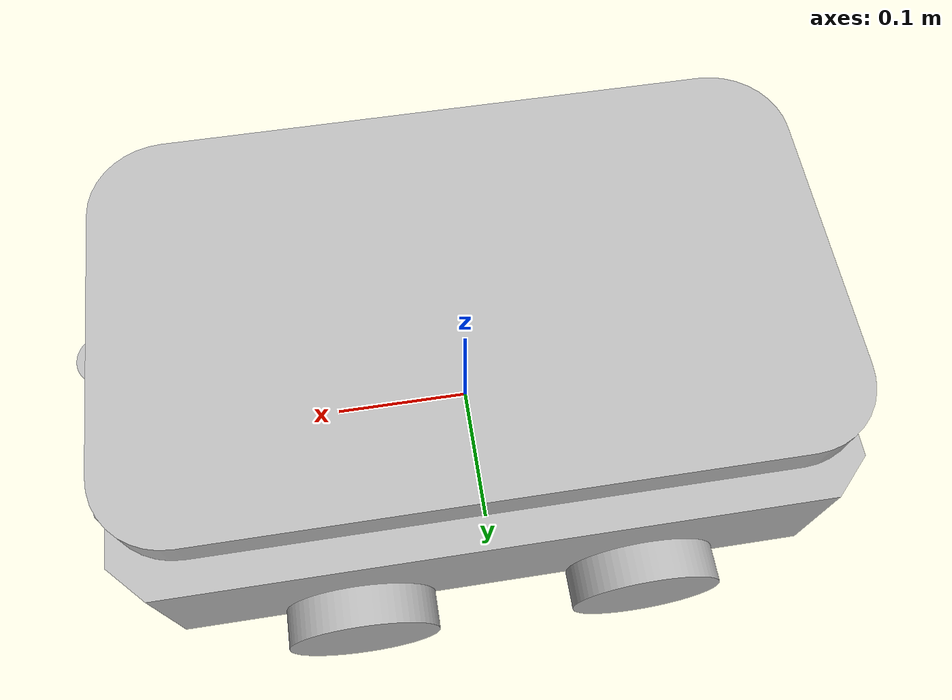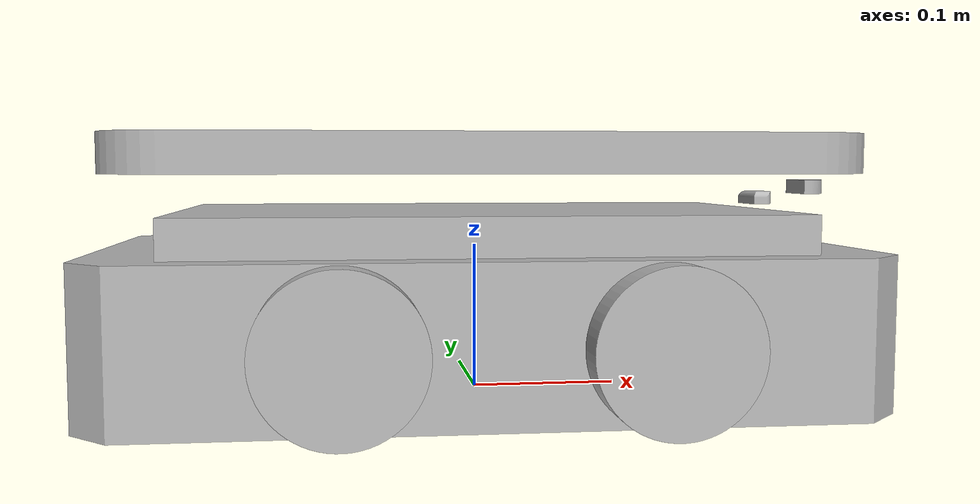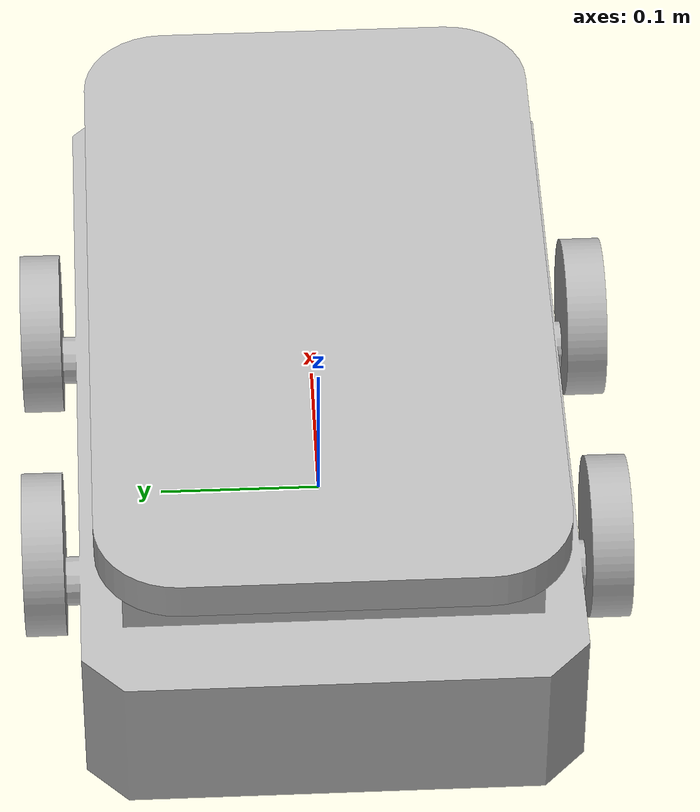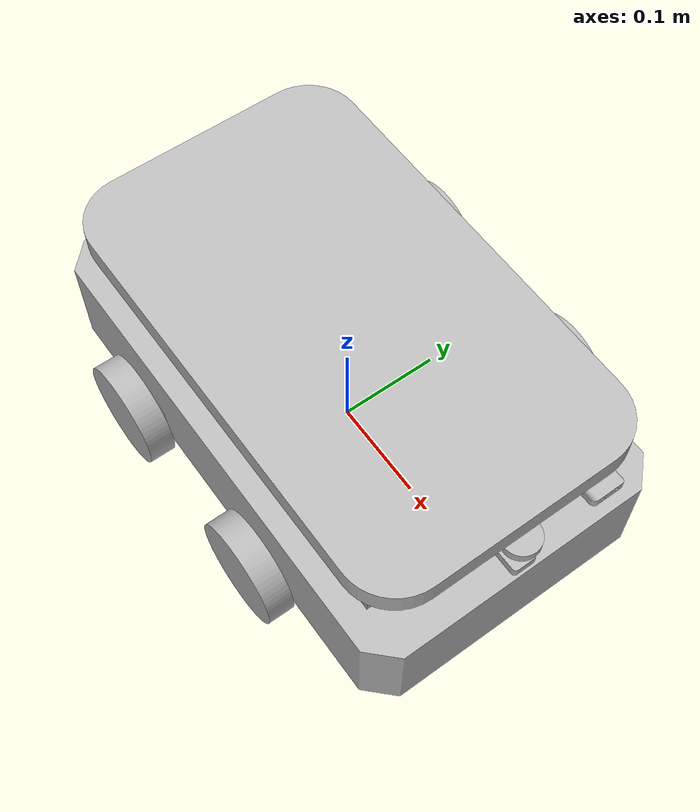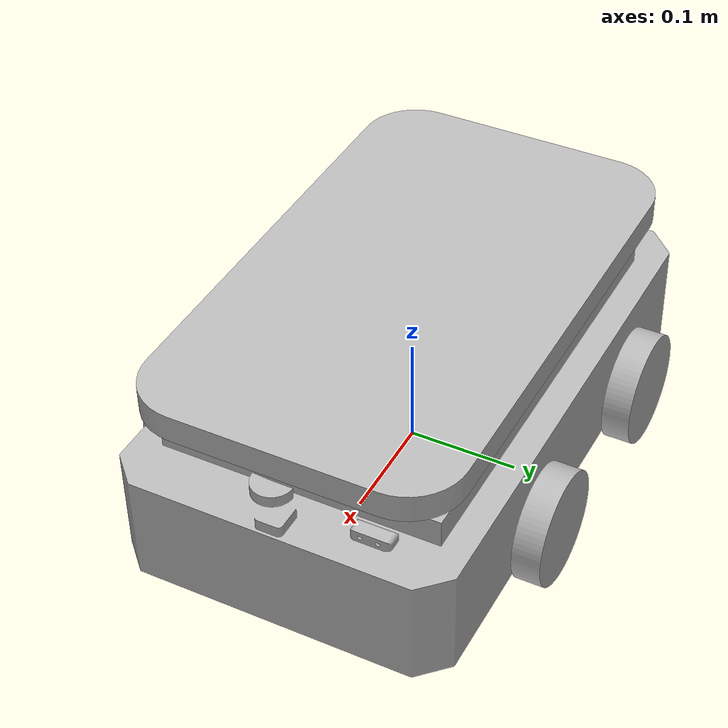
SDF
<?xml version="1.0" ?>
<sdf version="1.5">
    <model name="rusty_v1">
    <link name="base_link">
      <inertial>
        <mass>0.0001</mass>
        <inertia>
          <ixx>1e-09</ixx>
          <ixy>0</ixy>
          <ixz>0</ixz>
          <iyy>1e-09</iyy>
          <iyz>0</iyz>
          <izz>1e-09</izz>
        </inertia>
      </inertial>
       <sensor name="rusty_imu" type="imu">
        <always_on>true</always_on>
        <update_rate>200</update_rate>
        <topic>imu</topic>
        <imu>
          <angular_velocity>
            <x>
              <noise type="gaussian">
                <mean>0.0</mean>
                <stddev>2e-4</stddev>
              </noise>
            </x>
            <y>
              <noise type="gaussian">
                <mean>0.0</mean>
                <stddev>2e-4</stddev>
              </noise>
            </y>
            <z>
              <noise type="gaussian">
                <mean>0.0</mean>
                <stddev>2e-4</stddev>
              </noise>
            </z>
          </angular_velocity>
          <linear_acceleration>
            <x>
              <noise type="gaussian">
                <mean>0.0</mean>
                <stddev>1.7e-2</stddev>
              </noise>
            </x>
            <y>
              <noise type="gaussian">
                <mean>0.0</mean>
                <stddev>1.7e-2</stddev>
              </noise>
            </y>
            <z>
              <noise type="gaussian">
                <mean>0.0</mean>
                <stddev>1.7e-2</stddev>
              </noise>
            </z>
          </linear_acceleration>
        </imu>
      </sensor>
      <visual name="base_link_1__base_link_visual">
        <geometry>
          <mesh>
            <scale>0.01 0.01 0.01</scale>
            <uri>/home/siddarth/ros2ws/src/Rusty/rusty_common/meshes/base_link_1/base_link_visual.obj</uri>
          </mesh>
        </geometry>
      </visual>
      <collision name="base_link_1__base_link_collision">
        <pose relative_to="base_link">0.0 0.0 0.0875 -0.0 -1.5707963267948966 0</pose>
        <geometry>
          <box>
            <size>0.125 0.34 0.5</size>
          </box>
        </geometry>
      </collision>
    </link>

    <link name="rw1_1">
      <pose relative_to="base_link">-0.048075934676033716 0.16599272944775692 0.035152659990737724 6.938893903907236e-18 -0.0 0.0</pose>
      <inertial>
        <pose>0.1430759346760337 -0.3384927294477569 0.014847340009262286 -6.938893903907236e-18 -0.0 0.0</pose>
        <mass>0.1826050729899068</mass>
        <inertia>
          <ixx>0.00012363885150358436</ixx>
          <ixy>-8.673617379884035e-19</ixy>
          <ixz>-2.168404344971009e-19</ixz>
          <iyy>0.00022825634123738127</iyy>
          <iyz>6.505213034913027e-19</iyz>
          <izz>0.00012363885150358522</izz>
        </inertia>
      </inertial>
      <visual name="rw1_1__rw1_visual">
        <geometry>
          <mesh>
            <scale>0.01 0.01 0.01</scale>
            <uri>/home/siddarth/ros2ws/src/Rusty/rusty_common/meshes/rw1_1/rw1_visual.obj</uri>
          </mesh>
        </geometry>
      </visual>
      <collision name="rw1_1__rw1_collision">
        <pose relative_to="base_link">0.095 -0.1725 0.05 -0.0 -1.5707963267948966 0</pose>
        <geometry>
          <box>
            <size>0.10000000000000003 0.025 0.10000000000000002</size>
          </box>
        </geometry>
      </collision>
    </link>

    <link name="lw1_1">
      <pose relative_to="base_link">-0.0029629661386292127 -0.06704285733682042 0.04257306317273629 0.0 -0.0 0.0</pose>
      <inertial>
        <pose>0.09796296613862925 0.23954285733682046 0.007426936827263732 0.0 -0.0 0.0</pose>
        <mass>0.1826050729899069</mass>
        <inertia>
          <ixx>0.00012363885150357915</ixx>
          <ixy>8.673617379884035e-19</ixy>
          <ixz>2.927345865710862e-18</ixz>
          <iyy>0.00022825634123738083</iyy>
          <iyz>2.168404344971009e-19</iyz>
          <izz>0.00012363885150358002</izz>
        </inertia>
      </inertial>
      <visual name="lw1_1__lw1_visual">
        <geometry>
          <mesh>
            <scale>0.01 0.01 0.01</scale>
            <uri>/home/siddarth/ros2ws/src/Rusty/rusty_common/meshes/lw1_1/lw1_visual.obj</uri>
          </mesh>
        </geometry>
      </visual>
      <collision name="lw1_1__lw1_collision">
        <pose relative_to="base_link">0.095 0.1725 0.05000000000000001 -0.0 -1.5707963267948966 0</pose>
        <geometry>
          <box>
            <size>0.10000000000000005 0.025 0.10000000000000003</size>
          </box>
        </geometry>
      </collision>
    </link>

    <link name="rw2_1">
      <pose relative_to="base_link">0.05430130702462311 0.165 0.0004577485078454657 0.0 -0.0 0.0</pose>
      <inertial>
        <pose>-0.1493013070246231 -0.3375 0.049542251492154535 0.0 -0.0 0.0</pose>
        <mass>0.18260507298990683</mass>
        <inertia>
          <ixx>0.00012363885150357828</ixx>
          <ixy>-3.903127820947816e-18</ixy>
          <ixz>3.2526065174565133e-19</ixz>
          <iyy>0.00022825634123738083</iyy>
          <iyz>2.168404344971009e-19</iyz>
          <izz>0.00012363885150358436</izz>
        </inertia>
      </inertial>
      <visual name="rw2_1__rw2_visual">
        <geometry>
          <mesh>
            <scale>0.01 0.01 0.01</scale>
            <uri>/home/siddarth/ros2ws/src/Rusty/rusty_common/meshes/rw2_1/rw2_visual.obj</uri>
          </mesh>
        </geometry>
      </visual>
      <collision name="rw2_1__rw2_collision">
        <pose relative_to="base_link">-0.095 -0.1725 0.05 -0.0 -1.5707963267948966 0</pose>
        <geometry>
          <box>
            <size>0.10000000000000003 0.025 0.10000000000000005</size>
          </box>
        </geometry>
      </collision>
    </link>

    <link name="lw2_1">
      <pose relative_to="base_link">0.06544107043140138 -0.18624680235844282 -0.0338269179372204 2.7755575615628914e-17 -0.0 0.0</pose>
      <inertial>
        <pose>-0.16044107043140138 0.35874680235844275 0.08382691793722039 -2.7755575615628914e-17 -0.0 0.0</pose>
        <mass>0.18260507298990683</mass>
        <inertia>
          <ixx>0.00012363885150358956</ixx>
          <ixy>1.3010426069826053e-18</ixy>
          <ixz>-3.2526065174565133e-19</ixz>
          <iyy>0.00022825634123737823</iyy>
          <iyz>-6.505213034913027e-19</iyz>
          <izz>0.00012363885150358696</izz>
        </inertia>
      </inertial>
      <visual name="lw2_1__lw2_visual">
        <geometry>
          <mesh>
            <scale>0.01 0.01 0.01</scale>
            <uri>/home/siddarth/ros2ws/src/Rusty/rusty_common/meshes/lw2_1/lw2_visual.obj</uri>
          </mesh>
        </geometry>
      </visual>
      <collision name="lw2_1__lw2_collision">
        <pose relative_to="base_link">-0.095 0.1725 0.04999999999999999 -0.0 -1.5707963267948966 0</pose>
        <geometry>
          <box>
            <size>0.10000000000000003 0.025 0.1</size>
          </box>
        </geometry>
      </collision>
    </link>

    <link name="holder_1">
      <pose relative_to="base_link">0.0 0.0 -0.175 0.0 -0.0 0.0</pose>
      <inertial>
        <pose>-4.445233212745621e-17 0.0 0.3375 0.0 -0.0 0.0</pose>
        <mass>25.69775961700859</mass>
        <inertia>
          <ixx>0.16588185166989988</ixx>
          <ixy>0.0</ixy>
          <ixz>-5.45460352441296e-16</ixz>
          <iyy>0.46879960924575326</iyy>
          <iyz>6.282789399847388e-17</iyz>
          <izz>0.6320046109555476</izz>
        </inertia>
      </inertial>
      <visual name="holder_1__holder_visual">
        <geometry>
          <mesh>
            <scale>0.01 0.01 0.01</scale>
            <uri>/home/siddarth/ros2ws/src/Rusty/rusty_common/meshes/holder_1/holder_visual.obj</uri>
          </mesh>
        </geometry>
      </visual>
      <collision name="holder_1__holder_collision">
        <pose relative_to="base_link">0.0 0.0 0.1625 -0.0 -1.5707963267948966 0</pose>
        <geometry>
          <box>
            <size>0.025 0.28079487118715435 0.4739759520955434</size>
          </box>
        </geometry>
      </collision>
    </link>

    <link name="lidar_1">
      <pose relative_to="base_link">-0.1750000035017729 0.0 0.025 0.0 -0.0 0.0</pose>
      <inertial>
        <pose>0.41740216277899855 -0.00023091322011423596 0.11500000000000002 0.0 -0.0 0.0</pose>
        <mass>0.008257286244679606</mass>
        <inertia>
          <ixx>7.354661799746133e-07</ixx>
          <ixy>-1.4907316082660063e-08</ixy>
          <ixz>0.0</ixz>
          <iyy>2.580619663073531e-07</iyy>
          <iyz>2.117582368135751e-21</iyz>
          <izz>8.559067088706549e-07</izz>
        </inertia>
      </inertial>
      <visual name="lidar_1__lidar_visual">
        <geometry>
          <mesh>
            <scale>0.01 0.01 0.01</scale>
            <uri>/home/siddarth/ros2ws/src/Rusty/rusty_common/meshes/lidar_1/lidar_visual.obj</uri>
          </mesh>
        </geometry>
      </visual>
      <collision name="lidar_1__lidar_collision">
        <pose relative_to="base_link">0.2436204795744473 -0.0002689191593257145 0.139999999999608 0.031185268471219173 -1.5707963267948966 0</pose>
        <geometry>
          <box>
            <size>0.01 0.035608988160144975 0.018359642015575127</size>
          </box>
        </geometry>
      </collision>
      <sensor name="rusty_lidar" type="gpu_lidar">
        <always_on>true</always_on>
        <visualize>true</visualize>
        <pose>-0.064 0 0.121 0 0 0</pose>
        <update_rate>5</update_rate>
        <topic>scan</topic>
        <gz_frame_id>lidar_1</gz_frame_id>
        <lidar>
          <scan>
            <horizontal>
              <samples>360</samples>
              <resolution>1.000000</resolution>
              <min_angle>0.000000</min_angle>
              <max_angle>6.280000</max_angle>
            </horizontal>
          </scan>
          <range>
            <min>0.120000</min>
            <max>3.5</max>
            <resolution>0.015000</resolution>
          </range>
          <noise>
            <type>gaussian</type>
            <mean>0.0</mean>
            <stddev>0.01</stddev>
          </noise>
        </lidar>
      </sensor>
    </link>

    <link name="camera_1">
      <pose relative_to="base_link">0.005088479046599446 0.004599132655587397 0.0 0.0 -0.0 6.123233995736766e-17</pose>
      <inertial>
        <pose>0.23253901869823768 0.08250000000000439 0.12975699657340425 0.0 -0.0 -6.123233995736766e-17</pose>
        <mass>0.007791207915918992</mass>
        <inertia>
          <ixx>8.006957045842116e-07</ixx>
          <ixy>-2.168404344971009e-19</ixy>
          <ixz>-7.3239294176065135e-09</ixz>
          <iyy>1.9602796104574698e-07</iyy>
          <iyz>0.0</iyz>
          <izz>8.739575596594705e-07</izz>
        </inertia>
      </inertial>
      <visual name="camera_1__body1_visual">
        <geometry>
          <mesh>
            <scale>0.01 0.01 0.01</scale>
            <uri>/home/siddarth/ros2ws/src/Rusty/rusty_common/meshes/camera_1/body1_visual.obj</uri>
          </mesh>
        </geometry>
      </visual>
      <collision name="camera_1__body1_collision">
        <pose relative_to="base_link">0.23758847904659944 0.08709913265558741 0.13 -0.0 -1.5707963267948966 0</pose>
        <geometry>
          <box>
            <size>0.01 0.035 0.015</size>
          </box>
        </geometry>
      </collision>

      <!-- Camera Sensor -->
      <sensor name="camera" type="camera">
        <always_on>true</always_on>
        <visualize>true</visualize>
        <update_rate>30</update_rate>
        <topic>camera/image_raw</topic>
        <gz_frame_id>camera_1</gz_frame_id>
        <camera name="intel_realsense_r200">
          <camera_info_topic>camera/camera_info</camera_info_topic>
          <horizontal_fov>1.02974</horizontal_fov>
          <image>
            <width>1920</width>
            <height>1080</height>
            <format>R8G8B8</format>
          </image>
          <clip>
            <near>0.02</near>
            <far>300</far>
          </clip>
          <noise>
            <type>gaussian</type>
            <mean>0.0</mean>
            <stddev>0.007</stddev>
          </noise>
        </camera>
      </sensor>
    </link>

   <!--JOINTS-->

    <joint name="rw2" type="continuous">
      <pose relative_to="base_link">-0.095 -0.16 0.05 0.0 -0.0 0.0</pose>
      <parent>base_link</parent>
      <child>rw2_1</child>
      <axis>
        <xyz expressed_in="base_link">0.0 -1.0 0.0</xyz>
      </axis>
    </joint>

    <joint name="rw1" type="continuous">
      <pose relative_to="base_link">0.095 -0.16 0.05 0.0 -0.0 0.0</pose>
      <parent>base_link</parent>
      <child>rw1_1</child>
      <axis>
        <xyz expressed_in="base_link">0.0 1.0 0.0</xyz>
      </axis>
    </joint>

    <joint name="lw2" type="continuous">
      <pose relative_to="base_link">-0.095 0.16 0.05000000000000002 0.0 -0.0 0.0</pose>
      <parent>base_link</parent>
      <child>lw2_1</child>
      <axis>
        <xyz expressed_in="base_link">0.0 -1.0 0.0</xyz>
      </axis>
    </joint>

    <joint name="lw1" type="continuous">
      <pose relative_to="base_link">0.09500000000000001 0.16 0.05000000000000002 0.0 -0.0 0.0</pose>
      <parent>base_link</parent>
      <child>lw1_1</child>
      <axis>
        <xyz expressed_in="base_link">0.0 1.0 0.0</xyz>
      </axis>
    </joint>

    <joint name="holder" type="fixed">
      <pose relative_to="base_link">0.0 0.0 0.15 0.0 -0.0 0.0</pose>
      <parent>base_link</parent>
      <child>holder_1</child>
      <axis/>
    </joint>

    <joint name="lidar" type="fixed">
      <pose relative_to="base_link">0.235 0.0 0.135 0.0 -0.0 0.0</pose>
      <parent>base_link</parent>
      <child>lidar_1</child>
      <axis/>
    </joint>

    <joint name="camera" type="fixed">
      <pose relative_to="base_link">0.23758847904659944 0.08709913265558741 0.125 0.0 -0.0 0.0</pose>
      <parent>base_link</parent>
      <child>camera_1</child>
      <axis/>
    </joint>

    <plugin
       filename="ignition-gazebo-diff-drive-system"
      name="ignition::gazebo::systems::DiffDrive">
      <left_joint>lw1</left_joint>
     <left_joint>lw2</left_joint>
     <right_joint>rw1</right_joint>
     <right_joint>rw2</right_joint>
     <wheel_separation>1.25</wheel_separation>
     <wheel_radius>0.3</wheel_radius>
     <odom_publish_frequency>1</odom_publish_frequency>
     <max_linear_acceleration>1</max_linear_acceleration>
     <min_linear_acceleration>-1</min_linear_acceleration>
     <max_angular_acceleration>2</max_angular_acceleration>
     <min_angular_acceleration>-2</min_angular_acceleration>
     <max_linear_velocity>0.5</max_linear_velocity>
     <min_linear_velocity>-0.5</min_linear_velocity>
     <max_angular_velocity>1</max_angular_velocity>
     <topic>cmd_vel</topic>
     <odom_topic>odom</odom_topic>
     <frame_id>odom</frame_id>
     <tf_topic>/tf</tf_topic>
     <odom_publisher_frequency>30</odom_publisher_frequency>
     <child_frame_id>base_link</child_frame_id>

    </plugin>

    <plugin filename="gz-sim-joint-state-publisher-system"
      name="gz::sim::systems::JointStatePublisher">
      <topic>joint_states</topic>
      <joint_name>lw1</joint_name>
      <joint_name>lw2</joint_name>
      <joint_name>rw1</joint_name>
      <joint_name>rw2</joint_name>
    </plugin>

  </model>
</sdf>
